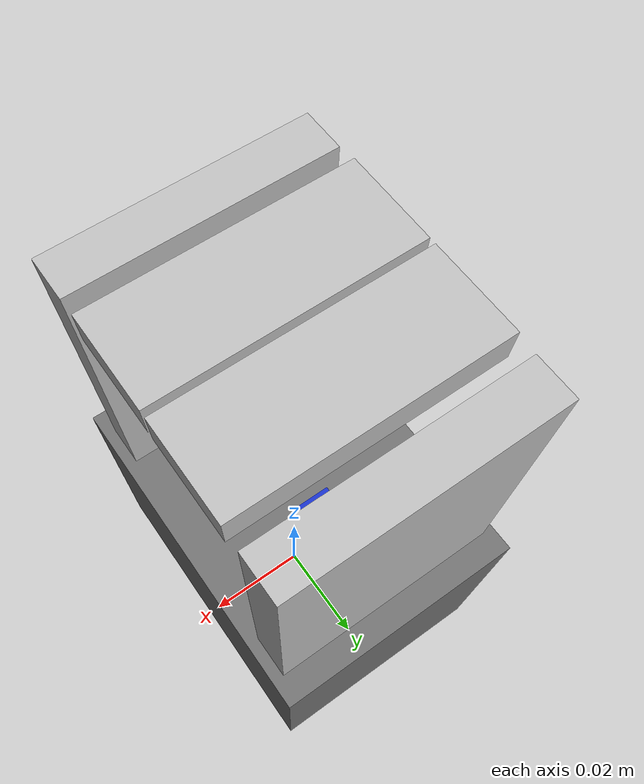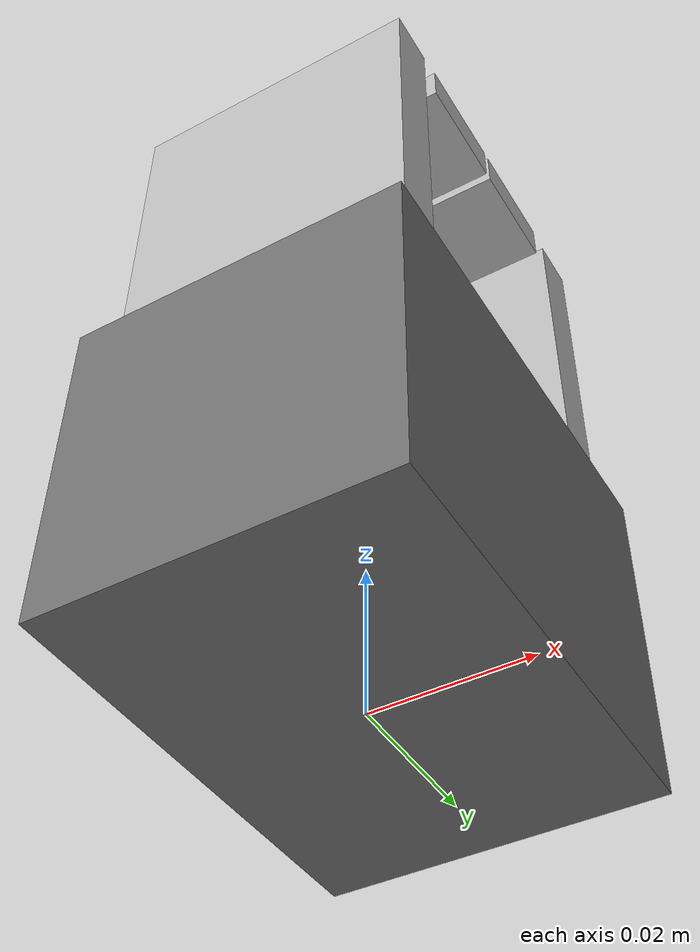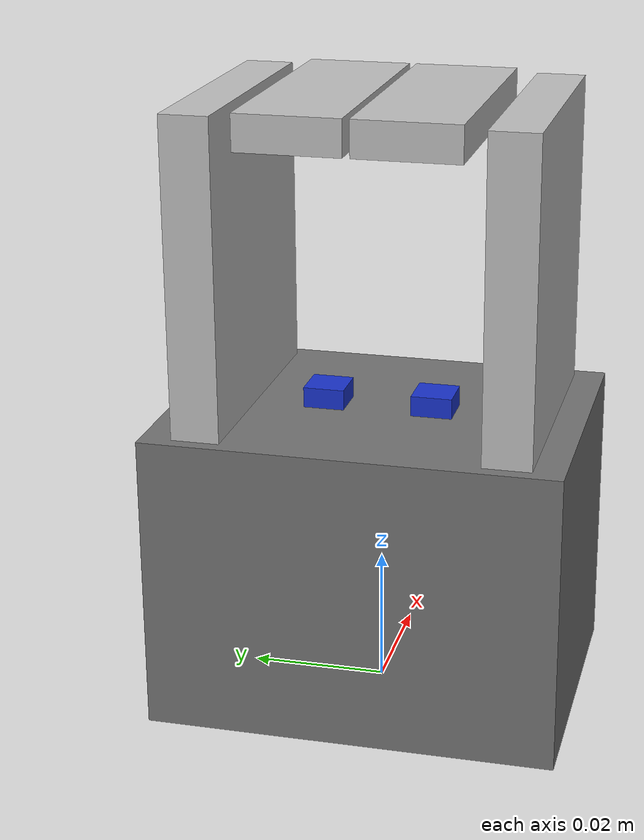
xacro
<?xml version="1.0"?>
<robot name="mplm1630_gripper_only" xmlns:xacro="http://www.ros.org/wiki/xacro">

  <xacro:include filename="$(find indy7_description)/urdf/custom_gripper.xacro"/>

  <!-- RViz에서 그리퍼만 보기 위한 임시 기준 링크 -->
  <link name="world"/>

  <!-- custom_gripper macro 호출 -->
  <xacro:custom_gripper parent="world" prefix="" />

</robot>

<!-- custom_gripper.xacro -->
<robot xmlns:xacro="http://www.ros.org/wiki/xacro">

  <xacro:macro name="custom_gripper" params="parent prefix:=''">

    <xacro:property name="finger_y" value="0.008"/>

    <link name="${prefix}gripper_base_link">

      <visual>
        <origin xyz="0 0 0.022" rpy="0 0 0"/>
        <geometry>
          <box size="0.044 0.060 0.044"/>
        </geometry>
        <material name="mplm_body_gray">
          <color rgba="0.45 0.45 0.45 1.0"/>
        </material>
      </visual>

      <collision name="${prefix}gripper_base_collision">
        <origin xyz="0 0 0.022" rpy="0 0 0"/>
        <geometry>
            <box size="0.044 0.060 0.044"/>
        </geometry>
      </collision>

      <inertial>
        <origin xyz="0 0 0" rpy="0 0 0"/>
        <mass value="0.263"/>
        <inertia ixx="0.001" ixy="0.0" ixz="0.0"
                 iyy="0.001" iyz="0.0"
                 izz="0.001"/>
      </inertial>

    </link>

    <joint name="${prefix}gripper_base_fixed_joint" type="fixed">
      <parent link="${parent}"/>
      <child link="${prefix}gripper_base_link"/>

      <origin xyz="0 0 0" rpy="0 0 0"/>
    </joint>

    <link name="${prefix}left_finger_link">

      <visual>
        <origin xyz="0 0 0" rpy="0 0 0"/>
        <geometry>
          <box size="0.006 0.006 0.006"/>
        </geometry>
        <material name="jaw_blue">
          <color rgba="0.1 0.2 0.8 1.0"/>
        </material>
      </visual>

      <collision name="${prefix}left_finger_collision">
        <origin xyz="0 0 0" rpy="0 0 0"/>
        <geometry>
            <box size="0.006 0.006 0.006"/>
        </geometry>
      </collision>

      <inertial>
        <origin xyz="0 0 0" rpy="0 0 0"/>
        <mass value="0.03"/>
        <inertia ixx="0.00005" ixy="0.0" ixz="0.0"
                 iyy="0.00005" iyz="0.0"
                 izz="0.00005"/>
      </inertial>

    </link>

    <joint name="${prefix}left_finger_joint" type="prismatic">
      <parent link="${prefix}gripper_base_link"/>
      <child link="${prefix}left_finger_link"/>

      <origin xyz="0 -${finger_y} 0.044" rpy="0 0 0"/>

      <axis xyz="0 -1 0"/>
      <limit lower="0.0" upper="0.015" effort="20.0" velocity="0.05"/>
    </joint>

    <link name="${prefix}left_tooltip_link">

      <visual>
        <origin xyz="0 -0.014 0.023" rpy="0 0 0"/>
        <geometry>
          <box size="0.0400 0.007 0.0460"/>
        </geometry>
        <material name="tooltip_gray">
          <color rgba="0.75 0.75 0.75 1.0"/>
        </material>
      </visual>

      <visual>
        <origin xyz="0 0 0.044" rpy="0 0 0"/>
        <geometry>
          <box size="0.0400 0.015 0.0052"/>
        </geometry>
        <material name="tooltip_gray">
          <color rgba="0.75 0.75 0.75 1.0"/>
        </material>
      </visual>

      <collision name="${prefix}left_tooltip_body_collision">
        <origin xyz="0 -0.014 0.023" rpy="0 0 0"/>
        <geometry>
            <box size="0.0400 0.007 0.0460"/>
        </geometry>
      </collision>

      <collision name="${prefix}left_tooltip_tooth_collision">
        <origin xyz="0 0 0.044" rpy="0 0 0"/>
        <geometry>
            <box size="0.0400 0.015 0.0052"/>
        </geometry>
      </collision>

      <inertial>
        <origin xyz="0 0 0" rpy="0 0 0"/>
        <mass value="0.02"/>
        <inertia ixx="0.00002" ixy="0.0" ixz="0.0"
                 iyy="0.00002" iyz="0.0"
                 izz="0.00002"/>
      </inertial>

    </link>

    <joint name="${prefix}left_tooltip_fixed_joint" type="fixed">
      <parent link="${prefix}left_finger_link"/>
      <child link="${prefix}left_tooltip_link"/>

      <origin xyz="0 0 0" rpy="0 0 0"/>
    </joint>

    <link name="${prefix}right_finger_link">

      <visual>
        <origin xyz="0 0 0" rpy="0 0 0"/>
        <geometry>
          <box size="0.006 0.006 0.006"/>
        </geometry>
        <material name="jaw_blue">
          <color rgba="0.1 0.2 0.8 1.0"/>
        </material>
      </visual>

      <collision name="${prefix}right_finger_collision">
        <origin xyz="0 0 0" rpy="0 0 0"/>
        <geometry>
            <box size="0.006 0.006 0.006"/>
        </geometry>
      </collision>

      <inertial>
        <origin xyz="0 0 0" rpy="0 0 0"/>
        <mass value="0.03"/>
        <inertia ixx="0.00005" ixy="0.0" ixz="0.0"
                 iyy="0.00005" iyz="0.0"
                 izz="0.00005"/>
      </inertial>

    </link>

    <joint name="${prefix}right_finger_joint" type="prismatic">
      <parent link="${prefix}gripper_base_link"/>
      <child link="${prefix}right_finger_link"/>

      <origin xyz="0 ${finger_y} 0.044" rpy="0 0 0"/>

      <axis xyz="0 1 0"/>
      <limit lower="0.0" upper="0.015" effort="20.0" velocity="0.05"/>
    </joint>

    <link name="${prefix}right_tooltip_link">

      <visual>
        <origin xyz="0 0.014 0.023" rpy="0 0 0"/>
        <geometry>
          <box size="0.0400 0.007 0.0460"/>
        </geometry>
        <material name="tooltip_gray">
          <color rgba="0.75 0.75 0.75 1.0"/>
        </material>
      </visual>

      <visual>
        <origin xyz="0 0 0.044" rpy="0 0 0"/>
        <geometry>
          <box size="0.0400 0.015 0.0052"/>
        </geometry>
        <material name="tooltip_gray">
          <color rgba="0.75 0.75 0.75 1.0"/>
        </material>
      </visual>

      <collision name="${prefix}right_tooltip_body_collision">
        <origin xyz="0 0.014 0.023" rpy="0 0 0"/>
        <geometry>
            <box size="0.0400 0.007 0.0460"/>
        </geometry>
      </collision>

      <collision name="${prefix}right_tooltip_tooth_collision">
        <origin xyz="0 0 0.044" rpy="0 0 0"/>
        <geometry>
            <box size="0.0400 0.015 0.0052"/>
        </geometry>
      </collision>

      <inertial>
        <origin xyz="0 0 0" rpy="0 0 0"/>
        <mass value="0.02"/>
        <inertia ixx="0.00002" ixy="0.0" ixz="0.0"
                 iyy="0.00002" iyz="0.0"
                 izz="0.00002"/>
      </inertial>

    </link>

    <joint name="${prefix}right_tooltip_fixed_joint" type="fixed">
      <parent link="${prefix}right_finger_link"/>
      <child link="${prefix}right_tooltip_link"/>

      <origin xyz="0 0 0" rpy="0 0 0"/>
    </joint>

    <link name="${prefix}gripper_tcp"/>

    <joint name="${prefix}gripper_tcp_joint" type="fixed">
      <parent link="${prefix}gripper_base_link"/>
      <child link="${prefix}gripper_tcp"/>

      <origin xyz="0 0 0" rpy="0 0 0"/>
    </joint>

  </xacro:macro>
</robot>
